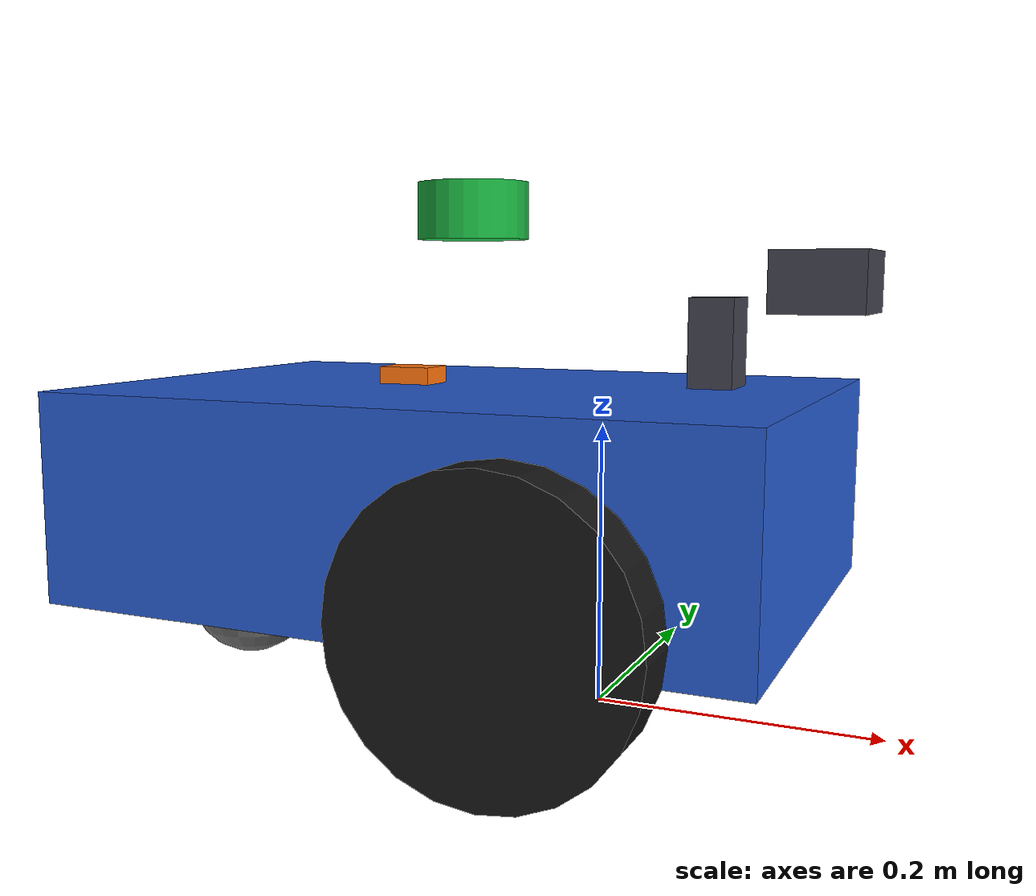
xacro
<?xml version="1.0"?>
<robot name="resilient_nav_robot" xmlns:xacro="http://www.ros.org/wiki/xacro">
  <xacro:arg name="gazebo_model_name" default="resilient_nav_robot"/>

  <xacro:property name="base_length" value="0.50"/>
  <xacro:property name="base_width" value="0.35"/>
  <xacro:property name="base_height" value="0.15"/>
  <xacro:property name="base_mass" value="5.0"/>
  <xacro:property name="base_z" value="0.15"/>
  <xacro:property name="base_com_x" value="-0.05"/>
  <xacro:property name="base_com_z" value="-0.04"/>

  <xacro:property name="wheel_radius" value="0.10"/>
  <xacro:property name="wheel_width" value="0.04"/>
  <xacro:property name="wheel_mass" value="0.50"/>
  <xacro:property name="wheel_x" value="0.10"/>
  <xacro:property name="wheel_y" value="${base_width / 2.0 + wheel_width / 2.0}"/>
  <xacro:property name="wheel_separation" value="${2.0 * wheel_y}"/>
  <xacro:property name="wheel_z" value="${wheel_radius - base_z}"/>
  <!-- Modest physical slip avoids an unrealistically ideal wheel odometry. -->
  <xacro:property name="wheel_slip_compliance_lateral" value="0.004"/>
  <xacro:property name="wheel_slip_compliance_longitudinal" value="0.002"/>
  <xacro:property name="wheel_normal_force" value="25.0"/>

  <xacro:property name="caster_radius" value="0.05"/>
  <xacro:property name="caster_mass" value="0.20"/>
  <xacro:property name="caster_x" value="-0.20"/>
  <xacro:property name="caster_z" value="${caster_radius - base_z}"/>

  <xacro:property name="body_friction" value="0.5"/>
  <xacro:property name="wheel_friction" value="1.0"/>
  <xacro:property name="caster_friction" value="0.05"/>

  <!-- Stage 4 mounting transforms. All values are relative to the named parent link. -->
  <xacro:property name="imu_xyz" value="${base_com_x} 0 0.08"/>
  <xacro:property name="imu_rpy" value="0 0 0"/>
  <xacro:property name="lidar_xyz" value="0 0 0.20"/>
  <xacro:property name="lidar_rpy" value="0 0 0"/>
  <xacro:property name="imu_update_rate" value="100"/>
  <xacro:property name="imu_angular_velocity_noise_stddev" value="0.0002"/>
  <xacro:property name="imu_linear_acceleration_noise_stddev" value="0.01"/>
  <xacro:property name="lidar_update_rate" value="15"/>
  <xacro:property name="lidar_horizontal_samples" value="639"/>
  <xacro:property name="lidar_min_angle" value="${-3.0 * pi / 4.0 + pi / 426.0}"/>
  <xacro:property name="lidar_max_angle" value="${3.0 * pi / 4.0}"/>
  <xacro:property name="lidar_min_range" value="0.08"/>
  <xacro:property name="lidar_max_range" value="12.0"/>
  <xacro:property name="lidar_range_noise_stddev" value="0.005"/>
  <xacro:property name="camera_mount_xyz" value="0.18 0 0.11"/>
  <xacro:property name="camera_mount_rpy" value="0 0 0"/>
  <xacro:property name="camera_xyz" value="0.07 0 0.04"/>
  <xacro:property name="camera_rpy" value="0 0 0"/>
  <xacro:property name="camera_optical_xyz" value="0 0 0"/>
  <xacro:property
    name="camera_optical_rpy"
    value="${-pi / 2.0} 0 ${-pi / 2.0}"/>
  <xacro:property name="camera_update_rate" value="30"/>
  <xacro:property name="camera_horizontal_fov" value="1.047"/>
  <xacro:property name="camera_image_width" value="640"/>
  <xacro:property name="camera_image_height" value="480"/>
  <xacro:property name="camera_clip_near" value="0.1"/>
  <xacro:property name="camera_clip_far" value="10.0"/>
  <xacro:property
    name="arm_mount_xyz"
    value="-0.10 0 ${base_height / 2.0}"/>
  <xacro:property name="arm_mount_rpy" value="0 0 0"/>

  <material name="body_blue">
    <color rgba="0.15 0.35 0.80 1.0"/>
  </material>

  <material name="wheel_dark">
    <color rgba="0.08 0.08 0.08 1.0"/>
  </material>

  <material name="caster_gray">
    <color rgba="0.45 0.45 0.45 1.0"/>
  </material>

  <material name="sensor_orange">
    <color rgba="1.0 0.45 0.05 1.0"/>
  </material>

  <material name="sensor_green">
    <color rgba="0.10 0.70 0.25 1.0"/>
  </material>

  <material name="sensor_gray">
    <color rgba="0.25 0.25 0.30 1.0"/>
  </material>

  <xacro:macro name="drive_wheel" params="side y_position">
    <link name="${side}_wheel_link">
      <visual>
        <origin xyz="0 0 0" rpy="${pi / 2.0} 0 0"/>
        <geometry>
          <cylinder radius="${wheel_radius}" length="${wheel_width}"/>
        </geometry>
        <material name="wheel_dark"/>
      </visual>
      <collision>
        <origin xyz="0 0 0" rpy="${pi / 2.0} 0 0"/>
        <geometry>
          <cylinder radius="${wheel_radius}" length="${wheel_width}"/>
        </geometry>
      </collision>
      <inertial>
        <origin xyz="0 0 0" rpy="0 0 0"/>
        <mass value="${wheel_mass}"/>
        <inertia
          ixx="${wheel_mass * (3.0 * wheel_radius * wheel_radius + wheel_width * wheel_width) / 12.0}"
          ixy="0"
          ixz="0"
          iyy="${wheel_mass * wheel_radius * wheel_radius / 2.0}"
          iyz="0"
          izz="${wheel_mass * (3.0 * wheel_radius * wheel_radius + wheel_width * wheel_width) / 12.0}"/>
      </inertial>
    </link>

    <joint name="${side}_wheel_joint" type="continuous">
      <origin xyz="${wheel_x} ${y_position} ${wheel_z}" rpy="0 0 0"/>
      <parent link="base_link"/>
      <child link="${side}_wheel_link"/>
      <axis xyz="0 1 0"/>
      <dynamics damping="0.05" friction="0.0"/>
    </joint>
  </xacro:macro>

  <link name="base_footprint"/>

  <link name="base_link">
    <visual>
      <origin xyz="0 0 0" rpy="0 0 0"/>
      <geometry>
        <box size="${base_length} ${base_width} ${base_height}"/>
      </geometry>
      <material name="body_blue"/>
    </visual>
    <collision>
      <origin xyz="0 0 0" rpy="0 0 0"/>
      <geometry>
        <box size="${base_length} ${base_width} ${base_height}"/>
      </geometry>
    </collision>
    <inertial>
      <origin xyz="${base_com_x} 0 ${base_com_z}" rpy="0 0 0"/>
      <mass value="${base_mass}"/>
      <inertia
        ixx="${base_mass * (base_width * base_width + base_height * base_height) / 12.0}"
        ixy="0"
        ixz="0"
        iyy="${base_mass * (base_length * base_length + base_height * base_height) / 12.0}"
        iyz="0"
        izz="${base_mass * (base_length * base_length + base_width * base_width) / 12.0}"/>
    </inertial>
  </link>

  <joint name="base_footprint_joint" type="fixed">
    <origin xyz="${-wheel_x} 0 ${base_z}" rpy="0 0 0"/>
    <parent link="base_footprint"/>
    <child link="base_link"/>
  </joint>

  <link name="imu_link">
    <visual>
      <origin xyz="0 0 0" rpy="0 0 0"/>
      <geometry>
        <box size="0.04 0.03 0.015"/>
      </geometry>
      <material name="sensor_orange"/>
    </visual>
  </link>

  <joint name="imu_joint" type="fixed">
    <origin xyz="${imu_xyz}" rpy="${imu_rpy}"/>
    <parent link="base_link"/>
    <child link="imu_link"/>
  </joint>

  <link name="lidar_link">
    <visual>
      <origin xyz="0 0 0" rpy="0 0 0"/>
      <geometry>
        <cylinder radius="0.04" length="0.04"/>
      </geometry>
      <material name="sensor_green"/>
    </visual>
  </link>

  <joint name="lidar_joint" type="fixed">
    <origin xyz="${lidar_xyz}" rpy="${lidar_rpy}"/>
    <parent link="base_link"/>
    <child link="lidar_link"/>
  </joint>

  <link name="camera_mount_link">
    <visual>
      <origin xyz="0 0 0" rpy="0 0 0"/>
      <geometry>
        <box size="0.03 0.04 0.06"/>
      </geometry>
      <material name="sensor_gray"/>
    </visual>
  </link>

  <joint name="camera_mount_joint" type="fixed">
    <origin xyz="${camera_mount_xyz}" rpy="${camera_mount_rpy}"/>
    <parent link="base_link"/>
    <child link="camera_mount_link"/>
  </joint>

  <link name="camera_link">
    <visual>
      <origin xyz="0 0 0" rpy="0 0 0"/>
      <geometry>
        <box size="0.06 0.08 0.04"/>
      </geometry>
      <material name="sensor_gray"/>
    </visual>
  </link>

  <joint name="camera_joint" type="fixed">
    <origin xyz="${camera_xyz}" rpy="${camera_rpy}"/>
    <parent link="camera_mount_link"/>
    <child link="camera_link"/>
  </joint>

  <link name="camera_optical_frame"/>

  <joint name="camera_optical_joint" type="fixed">
    <origin xyz="${camera_optical_xyz}" rpy="${camera_optical_rpy}"/>
    <parent link="camera_link"/>
    <child link="camera_optical_frame"/>
  </joint>

  <link name="arm_mount_link"/>

  <joint name="arm_mount_joint" type="fixed">
    <origin xyz="${arm_mount_xyz}" rpy="${arm_mount_rpy}"/>
    <parent link="base_link"/>
    <child link="arm_mount_link"/>
  </joint>

  <xacro:drive_wheel side="left" y_position="${wheel_y}"/>
  <xacro:drive_wheel side="right" y_position="${-wheel_y}"/>

  <link name="caster_link">
    <visual>
      <origin xyz="0 0 0" rpy="0 0 0"/>
      <geometry>
        <sphere radius="${caster_radius}"/>
      </geometry>
      <material name="caster_gray"/>
    </visual>
    <collision>
      <origin xyz="0 0 0" rpy="0 0 0"/>
      <geometry>
        <sphere radius="${caster_radius}"/>
      </geometry>
    </collision>
    <inertial>
      <origin xyz="0 0 0" rpy="0 0 0"/>
      <mass value="${caster_mass}"/>
      <inertia
        ixx="${2.0 * caster_mass * caster_radius * caster_radius / 5.0}"
        ixy="0"
        ixz="0"
        iyy="${2.0 * caster_mass * caster_radius * caster_radius / 5.0}"
        iyz="0"
        izz="${2.0 * caster_mass * caster_radius * caster_radius / 5.0}"/>
    </inertial>
  </link>

  <joint name="caster_joint" type="fixed">
    <origin xyz="${caster_x} 0 ${caster_z}" rpy="0 0 0"/>
    <parent link="base_link"/>
    <child link="caster_link"/>
  </joint>

  <gazebo reference="base_link">
    <mu1>${body_friction}</mu1>
    <mu2>${body_friction}</mu2>
    <material>Gazebo/Blue</material>
  </gazebo>

  <gazebo reference="left_wheel_link">
    <mu1>${wheel_friction}</mu1>
    <mu2>${wheel_friction}</mu2>
    <fdir1>0 1 0</fdir1>
    <material>Gazebo/Black</material>
  </gazebo>

  <gazebo reference="right_wheel_link">
    <mu1>${wheel_friction}</mu1>
    <mu2>${wheel_friction}</mu2>
    <fdir1>0 1 0</fdir1>
    <material>Gazebo/Black</material>
  </gazebo>

  <gazebo reference="caster_link">
    <mu1>${caster_friction}</mu1>
    <mu2>${caster_friction}</mu2>
    <material>Gazebo/Grey</material>
  </gazebo>

  <gazebo reference="imu_link">
    <sensor name="imu_sensor" type="imu">
      <always_on>true</always_on>
      <update_rate>${imu_update_rate}</update_rate>
      <topic>/imu/data</topic>
      <gz_frame_id>imu_link</gz_frame_id>
      <imu>
        <angular_velocity>
          <x>
            <noise type="gaussian">
              <mean>0.0</mean>
              <stddev>${imu_angular_velocity_noise_stddev}</stddev>
            </noise>
          </x>
          <y>
            <noise type="gaussian">
              <mean>0.0</mean>
              <stddev>${imu_angular_velocity_noise_stddev}</stddev>
            </noise>
          </y>
          <z>
            <noise type="gaussian">
              <mean>0.0</mean>
              <stddev>${imu_angular_velocity_noise_stddev}</stddev>
            </noise>
          </z>
        </angular_velocity>
        <linear_acceleration>
          <x>
            <noise type="gaussian">
              <mean>0.0</mean>
              <stddev>${imu_linear_acceleration_noise_stddev}</stddev>
            </noise>
          </x>
          <y>
            <noise type="gaussian">
              <mean>0.0</mean>
              <stddev>${imu_linear_acceleration_noise_stddev}</stddev>
            </noise>
          </y>
          <z>
            <noise type="gaussian">
              <mean>0.0</mean>
              <stddev>${imu_linear_acceleration_noise_stddev}</stddev>
            </noise>
          </z>
        </linear_acceleration>
        <enable_orientation>true</enable_orientation>
      </imu>
    </sensor>
  </gazebo>

  <gazebo reference="lidar_link">
    <sensor name="lidar_sensor" type="gpu_lidar">
      <always_on>true</always_on>
      <update_rate>${lidar_update_rate}</update_rate>
      <topic>/scan</topic>
      <gz_frame_id>lidar_link</gz_frame_id>
      <lidar>
        <scan>
          <horizontal>
            <samples>${lidar_horizontal_samples}</samples>
            <resolution>1</resolution>
            <min_angle>${lidar_min_angle}</min_angle>
            <max_angle>${lidar_max_angle}</max_angle>
          </horizontal>
          <vertical>
            <samples>1</samples>
            <resolution>1</resolution>
            <min_angle>0</min_angle>
            <max_angle>0</max_angle>
          </vertical>
        </scan>
        <range>
          <min>${lidar_min_range}</min>
          <max>${lidar_max_range}</max>
          <resolution>0.01</resolution>
        </range>
        <noise>
          <type>gaussian</type>
          <mean>0.0</mean>
          <stddev>${lidar_range_noise_stddev}</stddev>
        </noise>
      </lidar>
      <visualize>false</visualize>
    </sensor>
  </gazebo>

  <gazebo reference="camera_link">
    <sensor name="rgbd_camera_sensor" type="rgbd_camera">
      <always_on>true</always_on>
      <update_rate>${camera_update_rate}</update_rate>
      <topic>/camera</topic>
      <gz_frame_id>camera_optical_frame</gz_frame_id>
      <camera>
        <horizontal_fov>${camera_horizontal_fov}</horizontal_fov>
        <image>
          <width>${camera_image_width}</width>
          <height>${camera_image_height}</height>
        </image>
        <clip>
          <near>${camera_clip_near}</near>
          <far>${camera_clip_far}</far>
        </clip>
      </camera>
      <visualize>false</visualize>
    </sensor>
  </gazebo>

  <gazebo>
    <!-- Evaluation-only world-pose source.  This is deliberately separate
         from DiffDrive's odom/tf output so physical slip remains observable. -->
    <plugin
      filename="gz-sim-pose-publisher-system"
      name="gz::sim::systems::PosePublisher">
      <publish_link_pose>false</publish_link_pose>
      <publish_model_pose>true</publish_model_pose>
      <!-- Harmonic releases before the publish_model_pose fix require this
           compatibility flag for the top-level model pose. -->
      <publish_nested_model_pose>true</publish_nested_model_pose>
      <publish_visual_pose>false</publish_visual_pose>
      <publish_collision_pose>false</publish_collision_pose>
      <publish_sensor_pose>false</publish_sensor_pose>
      <use_pose_vector_msg>true</use_pose_vector_msg>
      <update_frequency>50</update_frequency>
    </plugin>

    <plugin
      filename="gz-sim-diff-drive-system"
      name="gz::sim::systems::DiffDrive">
      <left_joint>left_wheel_joint</left_joint>
      <right_joint>right_wheel_joint</right_joint>
      <wheel_separation>${wheel_separation}</wheel_separation>
      <wheel_radius>${wheel_radius}</wheel_radius>
      <topic>/model/$(arg gazebo_model_name)/cmd_vel</topic>
      <odom_topic>/model/$(arg gazebo_model_name)/odometry</odom_topic>
      <frame_id>odom</frame_id>
      <child_frame_id>base_footprint</child_frame_id>
    </plugin>

    <plugin
      filename="gz-sim-wheel-slip-system"
      name="gz::sim::systems::WheelSlip">
      <wheel link_name="left_wheel_link">
        <wheel_radius>${wheel_radius}</wheel_radius>
        <wheel_normal_force>${wheel_normal_force}</wheel_normal_force>
        <slip_compliance_lateral>${wheel_slip_compliance_lateral}</slip_compliance_lateral>
        <slip_compliance_longitudinal>${wheel_slip_compliance_longitudinal}</slip_compliance_longitudinal>
      </wheel>
      <wheel link_name="right_wheel_link">
        <wheel_radius>${wheel_radius}</wheel_radius>
        <wheel_normal_force>${wheel_normal_force}</wheel_normal_force>
        <slip_compliance_lateral>${wheel_slip_compliance_lateral}</slip_compliance_lateral>
        <slip_compliance_longitudinal>${wheel_slip_compliance_longitudinal}</slip_compliance_longitudinal>
      </wheel>
    </plugin>

    <plugin
      filename="gz-sim-joint-state-publisher-system"
      name="gz::sim::systems::JointStatePublisher">
      <topic>/world/resilient_lab/model/$(arg gazebo_model_name)/joint_state</topic>
      <joint_name>left_wheel_joint</joint_name>
      <joint_name>right_wheel_joint</joint_name>
    </plugin>
  </gazebo>
</robot>
